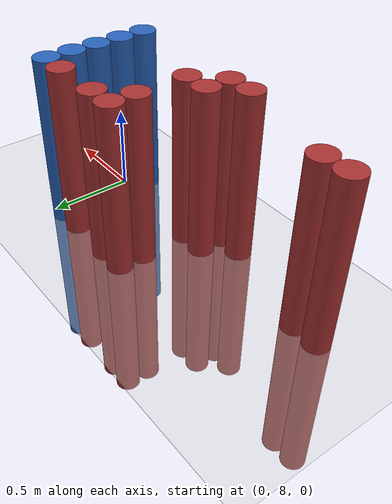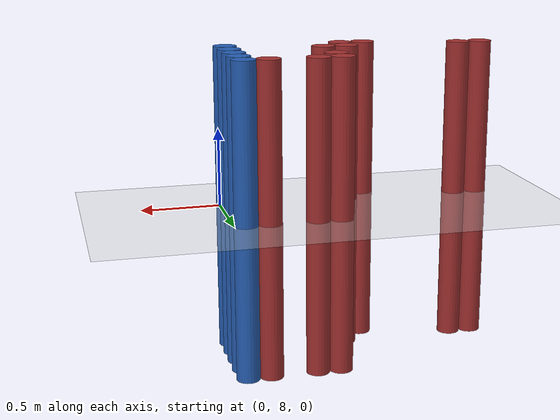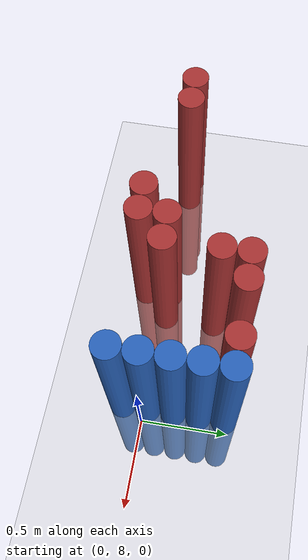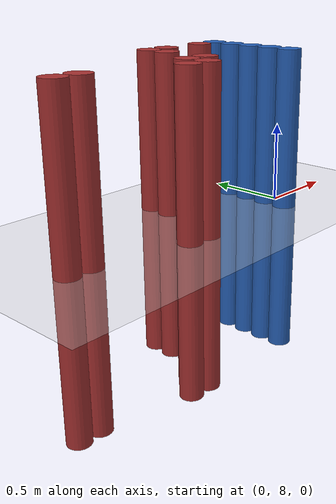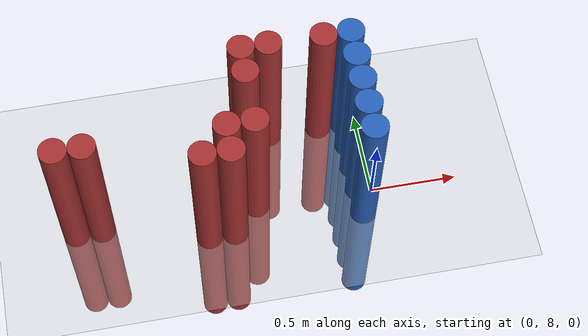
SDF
<sdf version="1.6">
 <world name="default">
  <model name="ground_plane">
   <static>1</static>
   <link name="link">
    <collision name="collision">
     <geometry><plane><normal>0 0 1</normal><size>100 100</size></plane></geometry>
     <surface><friction><ode><mu>100</mu><mu2>50</mu2></ode></friction></surface>
    </collision>
    <visual name="visual">
     <cast_shadows>0</cast_shadows>
     <geometry><plane><normal>0 0 1</normal><size>100 100</size></plane></geometry>
     <material>
      <script><uri>file://media/materials/scripts/gazebo.material</uri><name>Gazebo/Grey</name></script>
     </material>
    </visual>
   </link>
  </model>
  <model name="unit_cylinder_168">
   <static>1</static>
   <pose>-1.725000 8.025000 0.000000 0.000000 0.000000 0.000000</pose>
   <link name="link">
    <inertial>
     <mass>1</mass>
     <inertia><ixx>0.145833</ixx><ixy>0</ixy><ixz>0</ixz><iyy>0.145833</iyy><iyz>0</iyz><izz>0.125</izz></inertia>
    </inertial>
    <collision name="collision">
     <geometry><cylinder><radius>0.075000</radius><length>2</length></cylinder></geometry>
    </collision>
    <visual name="visual">
     <geometry><cylinder><radius>0.075000</radius><length>2</length></cylinder></geometry>
     <material>
      <ambient>0.648000 0.192000 0.192000 1</ambient>
      <diffuse>0.648000 0.192000 0.192000 1</diffuse>
     </material>
     <material>
      <script><name>Gazebo/Grey</name><uri>file://media/materials/scripts/gazebo.material</uri></script>
     </material>
    </visual>
   </link>
  </model>
  <model name="unit_cylinder_177">
   <static>1</static>
   <pose>-1.575000 8.025000 0.000000 0.000000 0.000000 0.000000</pose>
   <link name="link">
    <inertial>
     <mass>1</mass>
     <inertia><ixx>0.145833</ixx><ixy>0</ixy><ixz>0</ixz><iyy>0.145833</iyy><iyz>0</iyz><izz>0.125</izz></inertia>
    </inertial>
    <collision name="collision">
     <geometry><cylinder><radius>0.075000</radius><length>2</length></cylinder></geometry>
    </collision>
    <visual name="visual">
     <geometry><cylinder><radius>0.075000</radius><length>2</length></cylinder></geometry>
     <material>
      <ambient>0.648000 0.192000 0.192000 1</ambient>
      <diffuse>0.648000 0.192000 0.192000 1</diffuse>
     </material>
     <material>
      <script><name>Gazebo/Grey</name><uri>file://media/materials/scripts/gazebo.material</uri></script>
     </material>
    </visual>
   </link>
  </model>
  <model name="unit_cylinder_190">
   <static>1</static>
   <pose>-0.975000 7.875000 0.000000 0.000000 0.000000 0.000000</pose>
   <link name="link">
    <inertial>
     <mass>1</mass>
     <inertia><ixx>0.145833</ixx><ixy>0</ixy><ixz>0</ixz><iyy>0.145833</iyy><iyz>0</iyz><izz>0.125</izz></inertia>
    </inertial>
    <collision name="collision">
     <geometry><cylinder><radius>0.075000</radius><length>2</length></cylinder></geometry>
    </collision>
    <visual name="visual">
     <geometry><cylinder><radius>0.075000</radius><length>2</length></cylinder></geometry>
     <material>
      <ambient>0.648000 0.192000 0.192000 1</ambient>
      <diffuse>0.648000 0.192000 0.192000 1</diffuse>
     </material>
     <material>
      <script><name>Gazebo/Grey</name><uri>file://media/materials/scripts/gazebo.material</uri></script>
     </material>
    </visual>
   </link>
  </model>
  <model name="unit_cylinder_194">
   <static>1</static>
   <pose>-0.825000 7.875000 0.000000 0.000000 0.000000 0.000000</pose>
   <link name="link">
    <inertial>
     <mass>1</mass>
     <inertia><ixx>0.145833</ixx><ixy>0</ixy><ixz>0</ixz><iyy>0.145833</iyy><iyz>0</iyz><izz>0.125</izz></inertia>
    </inertial>
    <collision name="collision">
     <geometry><cylinder><radius>0.075000</radius><length>2</length></cylinder></geometry>
    </collision>
    <visual name="visual">
     <geometry><cylinder><radius>0.075000</radius><length>2</length></cylinder></geometry>
     <material>
      <ambient>0.648000 0.192000 0.192000 1</ambient>
      <diffuse>0.648000 0.192000 0.192000 1</diffuse>
     </material>
     <material>
      <script><name>Gazebo/Grey</name><uri>file://media/materials/scripts/gazebo.material</uri></script>
     </material>
    </visual>
   </link>
  </model>
  <model name="unit_cylinder_195">
   <static>1</static>
   <pose>-0.825000 8.025000 0.000000 0.000000 0.000000 0.000000</pose>
   <link name="link">
    <inertial>
     <mass>1</mass>
     <inertia><ixx>0.145833</ixx><ixy>0</ixy><ixz>0</ixz><iyy>0.145833</iyy><iyz>0</iyz><izz>0.125</izz></inertia>
    </inertial>
    <collision name="collision">
     <geometry><cylinder><radius>0.075000</radius><length>2</length></cylinder></geometry>
    </collision>
    <visual name="visual">
     <geometry><cylinder><radius>0.075000</radius><length>2</length></cylinder></geometry>
     <material>
      <ambient>0.648000 0.192000 0.192000 1</ambient>
      <diffuse>0.648000 0.192000 0.192000 1</diffuse>
     </material>
     <material>
      <script><name>Gazebo/Grey</name><uri>file://media/materials/scripts/gazebo.material</uri></script>
     </material>
    </visual>
   </link>
  </model>
  <model name="unit_cylinder_197">
   <static>1</static>
   <pose>-0.675000 8.025000 0.000000 0.000000 0.000000 0.000000</pose>
   <link name="link">
    <inertial>
     <mass>1</mass>
     <inertia><ixx>0.145833</ixx><ixy>0</ixy><ixz>0</ixz><iyy>0.145833</iyy><iyz>0</iyz><izz>0.125</izz></inertia>
    </inertial>
    <collision name="collision">
     <geometry><cylinder><radius>0.075000</radius><length>2</length></cylinder></geometry>
    </collision>
    <visual name="visual">
     <geometry><cylinder><radius>0.075000</radius><length>2</length></cylinder></geometry>
     <material>
      <ambient>0.648000 0.192000 0.192000 1</ambient>
      <diffuse>0.648000 0.192000 0.192000 1</diffuse>
     </material>
     <material>
      <script><name>Gazebo/Grey</name><uri>file://media/materials/scripts/gazebo.material</uri></script>
     </material>
    </visual>
   </link>
  </model>
  <model name="unit_cylinder_198">
   <static>1</static>
   <pose>-0.675000 8.325000 0.000000 0.000000 0.000000 0.000000</pose>
   <link name="link">
    <inertial>
     <mass>1</mass>
     <inertia><ixx>0.145833</ixx><ixy>0</ixy><ixz>0</ixz><iyy>0.145833</iyy><iyz>0</iyz><izz>0.125</izz></inertia>
    </inertial>
    <collision name="collision">
     <geometry><cylinder><radius>0.075000</radius><length>2</length></cylinder></geometry>
    </collision>
    <visual name="visual">
     <geometry><cylinder><radius>0.075000</radius><length>2</length></cylinder></geometry>
     <material>
      <ambient>0.648000 0.192000 0.192000 1</ambient>
      <diffuse>0.648000 0.192000 0.192000 1</diffuse>
     </material>
     <material>
      <script><name>Gazebo/Grey</name><uri>file://media/materials/scripts/gazebo.material</uri></script>
     </material>
    </visual>
   </link>
  </model>
  <model name="unit_cylinder_199">
   <static>1</static>
   <pose>-0.675000 8.475000 0.000000 0.000000 0.000000 0.000000</pose>
   <link name="link">
    <inertial>
     <mass>1</mass>
     <inertia><ixx>0.145833</ixx><ixy>0</ixy><ixz>0</ixz><iyy>0.145833</iyy><iyz>0</iyz><izz>0.125</izz></inertia>
    </inertial>
    <collision name="collision">
     <geometry><cylinder><radius>0.075000</radius><length>2</length></cylinder></geometry>
    </collision>
    <visual name="visual">
     <geometry><cylinder><radius>0.075000</radius><length>2</length></cylinder></geometry>
     <material>
      <ambient>0.648000 0.192000 0.192000 1</ambient>
      <diffuse>0.648000 0.192000 0.192000 1</diffuse>
     </material>
     <material>
      <script><name>Gazebo/Grey</name><uri>file://media/materials/scripts/gazebo.material</uri></script>
     </material>
    </visual>
   </link>
  </model>
  <model name="unit_cylinder_201">
   <static>1</static>
   <pose>-0.525000 8.475000 0.000000 0.000000 0.000000 0.000000</pose>
   <link name="link">
    <inertial>
     <mass>1</mass>
     <inertia><ixx>0.145833</ixx><ixy>0</ixy><ixz>0</ixz><iyy>0.145833</iyy><iyz>0</iyz><izz>0.125</izz></inertia>
    </inertial>
    <collision name="collision">
     <geometry><cylinder><radius>0.075000</radius><length>2</length></cylinder></geometry>
    </collision>
    <visual name="visual">
     <geometry><cylinder><radius>0.075000</radius><length>2</length></cylinder></geometry>
     <material>
      <ambient>0.648000 0.192000 0.192000 1</ambient>
      <diffuse>0.648000 0.192000 0.192000 1</diffuse>
     </material>
     <material>
      <script><name>Gazebo/Grey</name><uri>file://media/materials/scripts/gazebo.material</uri></script>
     </material>
    </visual>
   </link>
  </model>
  <model name="unit_cylinder_204">
   <static>1</static>
   <pose>-0.225000 8.475000 0.000000 0.000000 0.000000 0.000000</pose>
   <link name="link">
    <inertial>
     <mass>1</mass>
     <inertia><ixx>0.145833</ixx><ixy>0</ixy><ixz>0</ixz><iyy>0.145833</iyy><iyz>0</iyz><izz>0.125</izz></inertia>
    </inertial>
    <collision name="collision">
     <geometry><cylinder><radius>0.075000</radius><length>2</length></cylinder></geometry>
    </collision>
    <visual name="visual">
     <geometry><cylinder><radius>0.075000</radius><length>2</length></cylinder></geometry>
     <material>
      <ambient>0.648000 0.192000 0.192000 1</ambient>
      <diffuse>0.648000 0.192000 0.192000 1</diffuse>
     </material>
     <material>
      <script><name>Gazebo/Grey</name><uri>file://media/materials/scripts/gazebo.material</uri></script>
     </material>
    </visual>
   </link>
  </model>
  <model name="unit_cylinder_224">
   <static>1</static>
   <pose>-0.075000 7.875000 0.000000 0.000000 0.000000 0.000000</pose>
   <link name="link">
    <inertial>
     <mass>1</mass>
     <inertia><ixx>0.145833</ixx><ixy>0</ixy><ixz>0</ixz><iyy>0.145833</iyy><iyz>0</iyz><izz>0.125</izz></inertia>
    </inertial>
    <collision name="collision">
     <geometry><cylinder><radius>0.075000</radius><length>2</length></cylinder></geometry>
    </collision>
    <visual name="visual">
     <geometry><cylinder><radius>0.075000</radius><length>2</length></cylinder></geometry>
     <material>
      <ambient>0.152000 0.379000 0.720000 1</ambient>
      <diffuse>0.152000 0.379000 0.720000 1</diffuse>
     </material>
     <material>
      <script><name>Gazebo/Grey</name><uri>file://media/materials/scripts/gazebo.material</uri></script>
     </material>
    </visual>
   </link>
  </model>
  <model name="unit_cylinder_225">
   <static>1</static>
   <pose>-0.075000 8.025000 0.000000 0.000000 0.000000 0.000000</pose>
   <link name="link">
    <inertial>
     <mass>1</mass>
     <inertia><ixx>0.145833</ixx><ixy>0</ixy><ixz>0</ixz><iyy>0.145833</iyy><iyz>0</iyz><izz>0.125</izz></inertia>
    </inertial>
    <collision name="collision">
     <geometry><cylinder><radius>0.075000</radius><length>2</length></cylinder></geometry>
    </collision>
    <visual name="visual">
     <geometry><cylinder><radius>0.075000</radius><length>2</length></cylinder></geometry>
     <material>
      <ambient>0.152000 0.379000 0.720000 1</ambient>
      <diffuse>0.152000 0.379000 0.720000 1</diffuse>
     </material>
     <material>
      <script><name>Gazebo/Grey</name><uri>file://media/materials/scripts/gazebo.material</uri></script>
     </material>
    </visual>
   </link>
  </model>
  <model name="unit_cylinder_226">
   <static>1</static>
   <pose>-0.075000 8.175000 0.000000 0.000000 0.000000 0.000000</pose>
   <link name="link">
    <inertial>
     <mass>1</mass>
     <inertia><ixx>0.145833</ixx><ixy>0</ixy><ixz>0</ixz><iyy>0.145833</iyy><iyz>0</iyz><izz>0.125</izz></inertia>
    </inertial>
    <collision name="collision">
     <geometry><cylinder><radius>0.075000</radius><length>2</length></cylinder></geometry>
    </collision>
    <visual name="visual">
     <geometry><cylinder><radius>0.075000</radius><length>2</length></cylinder></geometry>
     <material>
      <ambient>0.152000 0.379000 0.720000 1</ambient>
      <diffuse>0.152000 0.379000 0.720000 1</diffuse>
     </material>
     <material>
      <script><name>Gazebo/Grey</name><uri>file://media/materials/scripts/gazebo.material</uri></script>
     </material>
    </visual>
   </link>
  </model>
  <model name="unit_cylinder_227">
   <static>1</static>
   <pose>-0.075000 8.325000 0.000000 0.000000 0.000000 0.000000</pose>
   <link name="link">
    <inertial>
     <mass>1</mass>
     <inertia><ixx>0.145833</ixx><ixy>0</ixy><ixz>0</ixz><iyy>0.145833</iyy><iyz>0</iyz><izz>0.125</izz></inertia>
    </inertial>
    <collision name="collision">
     <geometry><cylinder><radius>0.075000</radius><length>2</length></cylinder></geometry>
    </collision>
    <visual name="visual">
     <geometry><cylinder><radius>0.075000</radius><length>2</length></cylinder></geometry>
     <material>
      <ambient>0.152000 0.379000 0.720000 1</ambient>
      <diffuse>0.152000 0.379000 0.720000 1</diffuse>
     </material>
     <material>
      <script><name>Gazebo/Grey</name><uri>file://media/materials/scripts/gazebo.material</uri></script>
     </material>
    </visual>
   </link>
  </model>
  <model name="unit_cylinder_228">
   <static>1</static>
   <pose>-0.075000 8.475000 0.000000 0.000000 0.000000 0.000000</pose>
   <link name="link">
    <inertial>
     <mass>1</mass>
     <inertia><ixx>0.145833</ixx><ixy>0</ixy><ixz>0</ixz><iyy>0.145833</iyy><iyz>0</iyz><izz>0.125</izz></inertia>
    </inertial>
    <collision name="collision">
     <geometry><cylinder><radius>0.075000</radius><length>2</length></cylinder></geometry>
    </collision>
    <visual name="visual">
     <geometry><cylinder><radius>0.075000</radius><length>2</length></cylinder></geometry>
     <material>
      <ambient>0.152000 0.379000 0.720000 1</ambient>
      <diffuse>0.152000 0.379000 0.720000 1</diffuse>
     </material>
     <material>
      <script><name>Gazebo/Grey</name><uri>file://media/materials/scripts/gazebo.material</uri></script>
     </material>
    </visual>
   </link>
  </model>
 </world>
</sdf>
